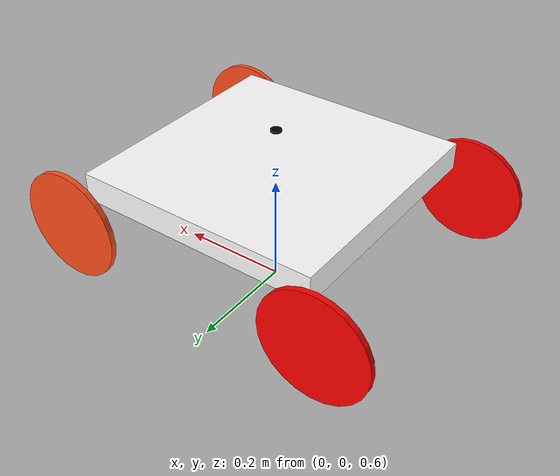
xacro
<?xml version="1.0"?>
<robot xmlns:xacro="http://www.ros.org/wiki/xacro"  name="robot">
    <xacro:include filename="inertial_macros.xacro" />
    <xacro:include filename="robot_core.xacro" />
    <xacro:include filename="gazebo_control.xacro" />
    <xacro:include filename="lidar.xacro" />
</robot>

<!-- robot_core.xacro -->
<robot xmlns:xacro="http://www.ros.org/wiki/xacro" >
    <material name="white">
        <color rgba="1 1 1 1" />
    </material>

    <material name="orange">
        <color rgba="1 0.3 0.1 1"/>
    </material>

    <material name="blue">
        <color rgba="0.2 0.2 1 1"/>
    </material>

    <material name="black">
        <color rgba="0 0 0 1"/>
    </material>

    <material name="red">
        <color rgba="1 0 0 1"/>
    </material>

    <!-- BASE LINK -->

    <link name="base_link">
    </link>

    <joint name="chassis_joint" type="fixed">
        <parent link="base_link"/>
        <child link="chassis"/>
        <origin xyz="0 0 0.75" rpy="0 0 0"/>
    </joint>

    <link name="chassis">
        <visual>
            <origin xyz="0 0 0.075" rpy="0 0 0"/>
            <geometry>
                <box size="0.451 0.451 0.05"/>
            </geometry>
            <material name="white"/>
        </visual>
        <collision>
            <origin xyz="0 0 0.075" rpy="0 0 0"/>
            <geometry>
                <box size="0.451 0.451 0.05"/>
            </geometry>
        </collision>
        <xacro:inertial_box mass="0.451" x="0.451" y="0.451" z="0.05">
            <origin xyz="0 0 0.075" rpy="0 0 0"/>
        </xacro:inertial_box>
    </link>
    <gazebo reference="chassis">
        <material>Gazebo/White</material>
    </gazebo>

    <!-- BASE_FOOTPRINT LINK -->
    <joint name="base_footprint_joint" type="fixed">
        <parent link="base_link"/>
        <child link="base_footprint"/>
        <origin xyz="0 0 0" rpy="0 0 0"/>
    </joint>

    <link name="base_footprint">
    </link>

    <!-- LEFT FRONT WHEEL -->

    <joint name="left_wheel_joint" type="continuous">
        <parent link="chassis"/>
        <child link="left_wheel"/>
        <origin xyz="0.25 0.25 0" rpy="-${pi/2} 0 0"/>
        <axis xyz="0 0 1"/>
    </joint>

    <link name="left_wheel">
        <visual>
            <geometry>
                <cylinder length="0.01" radius="0.1" />
            </geometry>
            <material name="orange"/>
        </visual>
        <collision>
            <geometry>
                <cylinder length="0.01" radius="0.1" />
            </geometry>
        </collision>
        <xacro:inertial_cylinder mass="0.1" length="0.01" radius="0.1">
            <origin xyz="0 0 0" rpy="0 0 0"/>
        </xacro:inertial_cylinder>
    </link>
    <gazebo reference="left_wheel">
        <material>Gazebo/Orange</material>
    </gazebo>

    <!-- LEFT REAR WHEEL -->
    <joint name="left_wheel1_joint" type="continuous">
        <parent link="chassis"/>
        <child link="left_wheel1"/>
        <origin xyz="0.25 -0.25 0" rpy="-${pi/2} 0 0"/>
        <axis xyz="0 0 1"/>
    </joint>

    <link name="left_wheel1">
        <visual>
            <geometry>
                <cylinder length="0.01" radius="0.1" />
            </geometry>
            <material name="orange"/>
        </visual>
        <collision>
            <geometry>
                <cylinder length="0.01" radius="0.1" />
            </geometry>
        </collision>
        <xacro:inertial_cylinder mass="0.1" length="0.01" radius="0.1">
            <origin xyz="0 0 0" rpy="0 0 0"/>
        </xacro:inertial_cylinder>
    </link>
    <gazebo reference="left_wheel1">
        <material>Gazebo/Orange</material>
    </gazebo>

    <!-- RIGHT FRONT WHEEL -->
    <joint name="right_wheel_joint" type="continuous">
        <parent link="chassis"/>
        <child link="right_wheel"/>
        <origin xyz="-0.25 0.25 0" rpy="${pi/2} 0 0"/>
        <axis xyz="0 0 -1"/>
    </joint>

    <link name="right_wheel">
        <visual>
            <geometry>
                <cylinder length="0.01" radius="0.1" />
            </geometry>
            <material name="red"/>
        </visual>
        <collision>
            <geometry>
                <cylinder length="0.01" radius="0.1" />
            </geometry>
        </collision>
        <xacro:inertial_cylinder mass="0.1" length="0.01" radius="0.1">
            <origin xyz="0 0 0" rpy="0 0 0"/>
        </xacro:inertial_cylinder>
    </link>
    <gazebo reference="right_wheel">
        <material>Gazebo/Red</material>
    </gazebo>

    <!-- RIGHT REAR WHEEL -->
    <joint name="right_wheel1_joint" type="continuous">
        <parent link="chassis"/>
        <child link="right_wheel1"/>
        <origin xyz="-0.25 -0.25 0" rpy="${pi/2} 0 0"/>
        <axis xyz="0 0 -1"/>
    </joint>

    <link name="right_wheel1">
        <visual>
            <geometry>
                <cylinder length="0.01" radius="0.1" />
            </geometry>
            <material name="red"/>
        </visual>
        <collision>
            <geometry>
                <cylinder length="0.01" radius="0.1" />
            </geometry>
        </collision>
        <xacro:inertial_cylinder mass="0.1" length="0.01" radius="0.1">
            <origin xyz="0 0 0" rpy="0 0 0"/>
        </xacro:inertial_cylinder>
    </link>
    <gazebo reference="right_wheel1">
        <material>Gazebo/Red</material>
    </gazebo>

    <!-- CASTER WHEEL -->

</robot>

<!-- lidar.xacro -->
<robot xmlns:xacro="http://www.ros.org/wiki/xacro" >

    <joint name="laser_joint" type="fixed">
        <parent link="chassis"/>
        <child link="laser_frame"/>
        <origin xyz="0 0 0.155" rpy="0 0 0"/>
    </joint>

    <link name="laser_frame">
        <visual>
            <geometry>
                <cylinder radius="0.010" length="0.004"/>
            </geometry>
            <material name="black"/>
        </visual>
        <collision>
            <geometry>
                <cylinder radius="0.010" length="0.004"/>
            </geometry>
        </collision>
        <xacro:inertial_cylinder mass="0.1" length="0.1" radius="0.010">
            <origin xyz="0 0 0" rpy="0 0 0"/>
        </xacro:inertial_cylinder>
    </link>

    <gazebo reference="laser_frame">
        <material>Gazebo/Black</material>

        <sensor name="laser" type="ray">
            <pose> 0 0 0 0 0 0 </pose>
            <visualize>true</visualize>
            <update_rate>10</update_rate>
            <ray>
                <scan>
                    <horizontal>
                        <samples>1080</samples>
                        <min_angle>-3.14</min_angle>
                        <max_angle>3.14</max_angle>
                    </horizontal>
                </scan>
                <range>
                    <min>0.3</min>
                    <max>12</max>
                </range>
            </ray>

            <plugin name="laser_controller" filename="libgazebo_ros_ray_sensor.so">
                <ros>
                    <argument>~/out:=scan</argument>
                </ros>
                <output_type>sensor_msgs/LaserScan</output_type>
                <frame_name>laser_frame</frame_name>
            </plugin>
        </sensor>
    </gazebo>

</robot>
